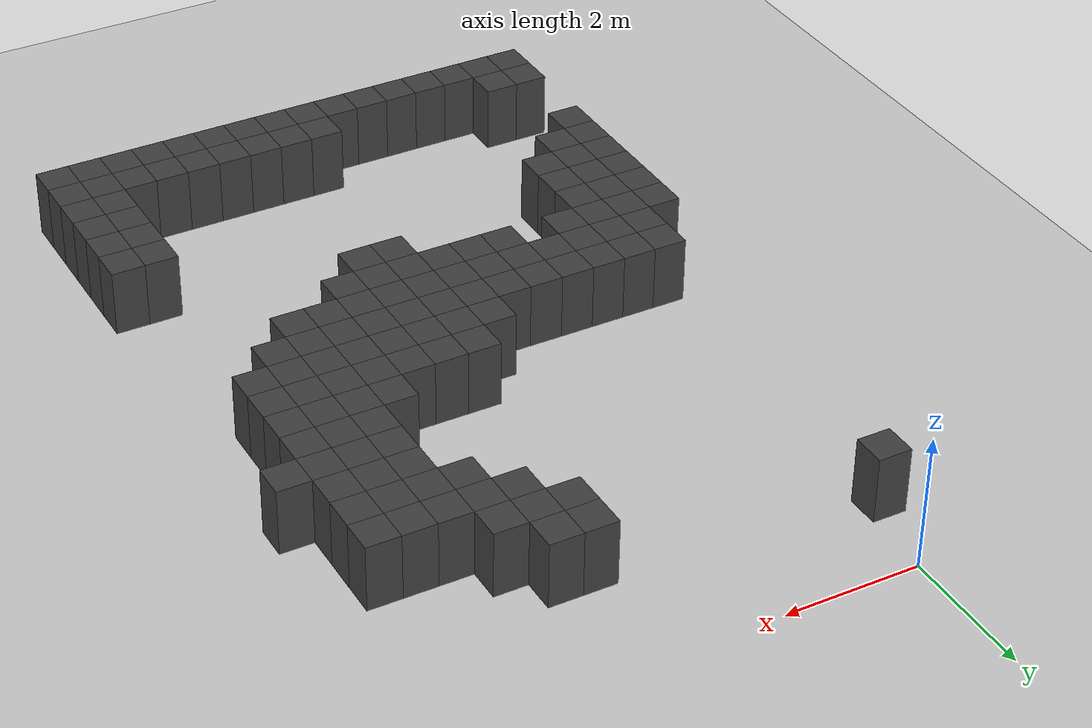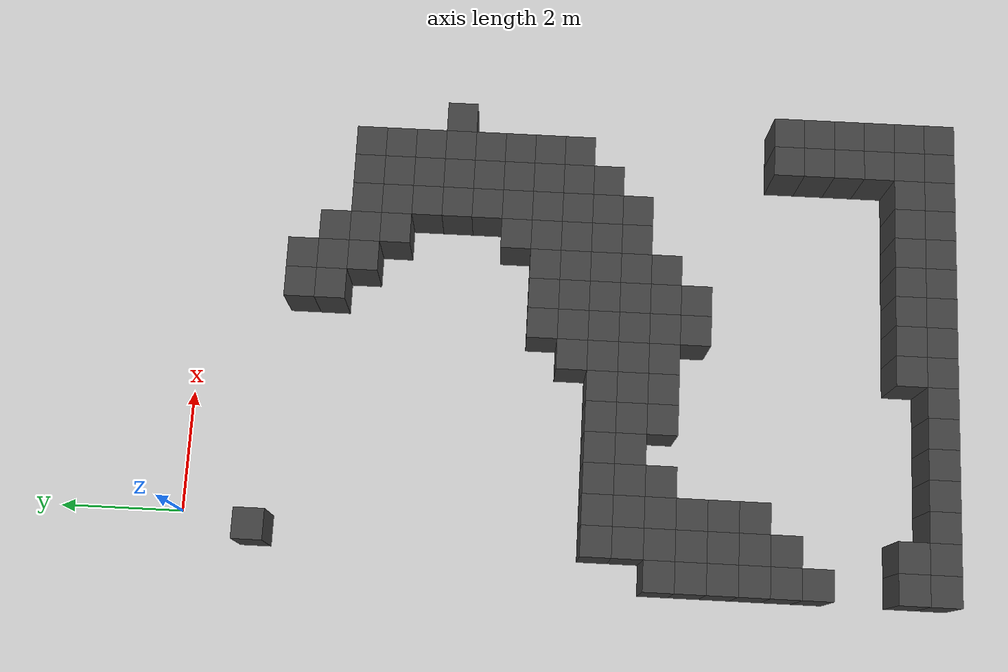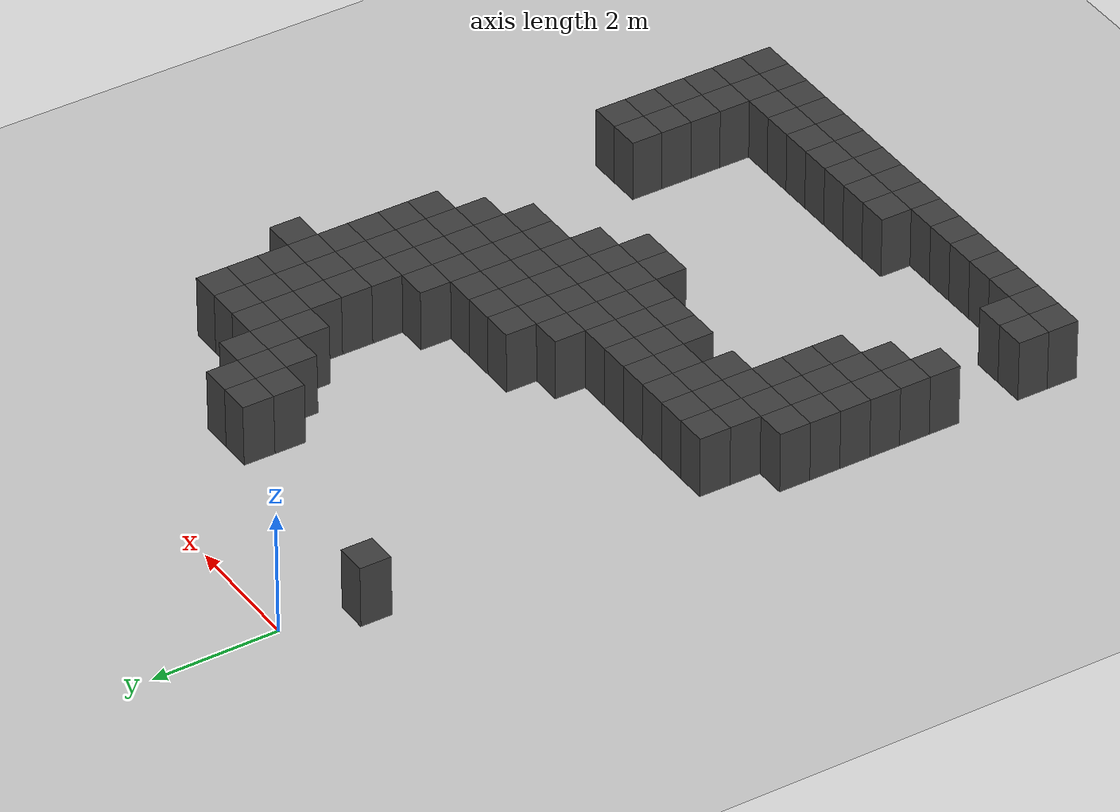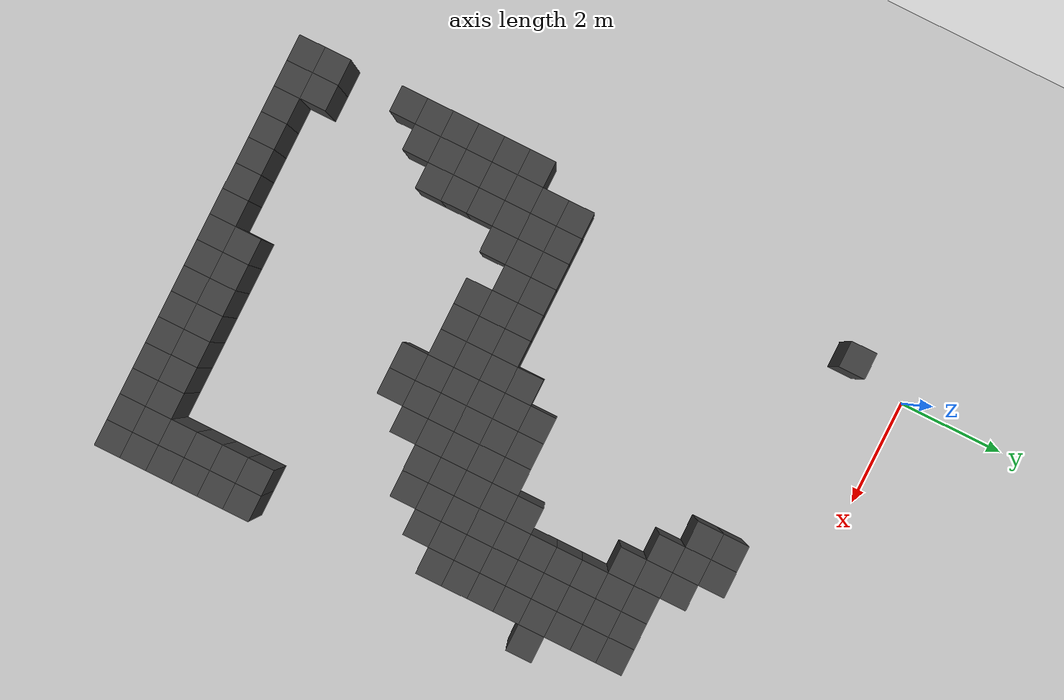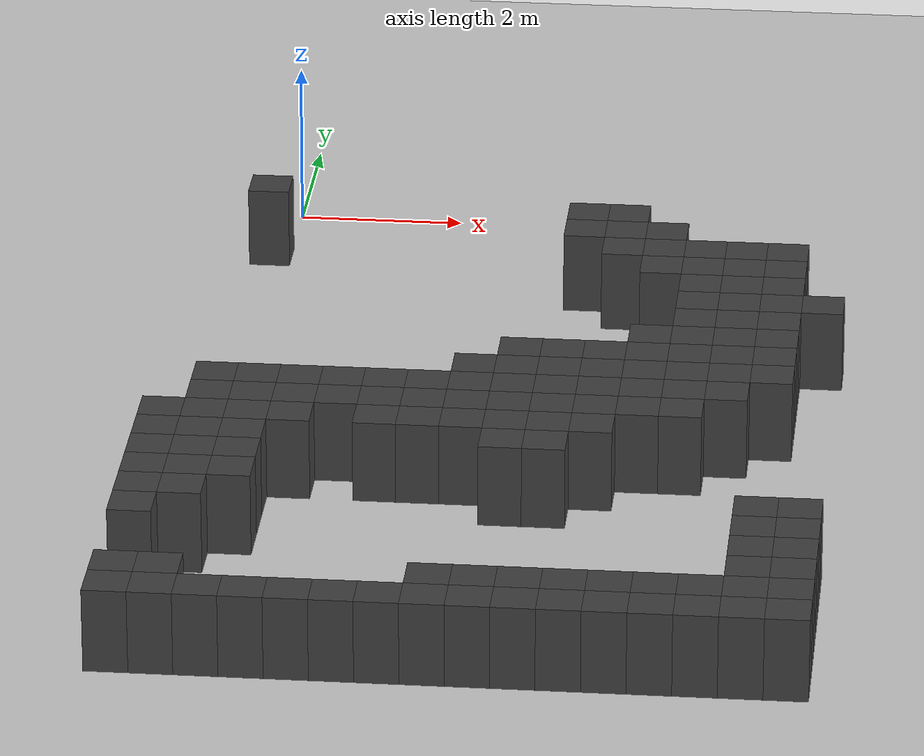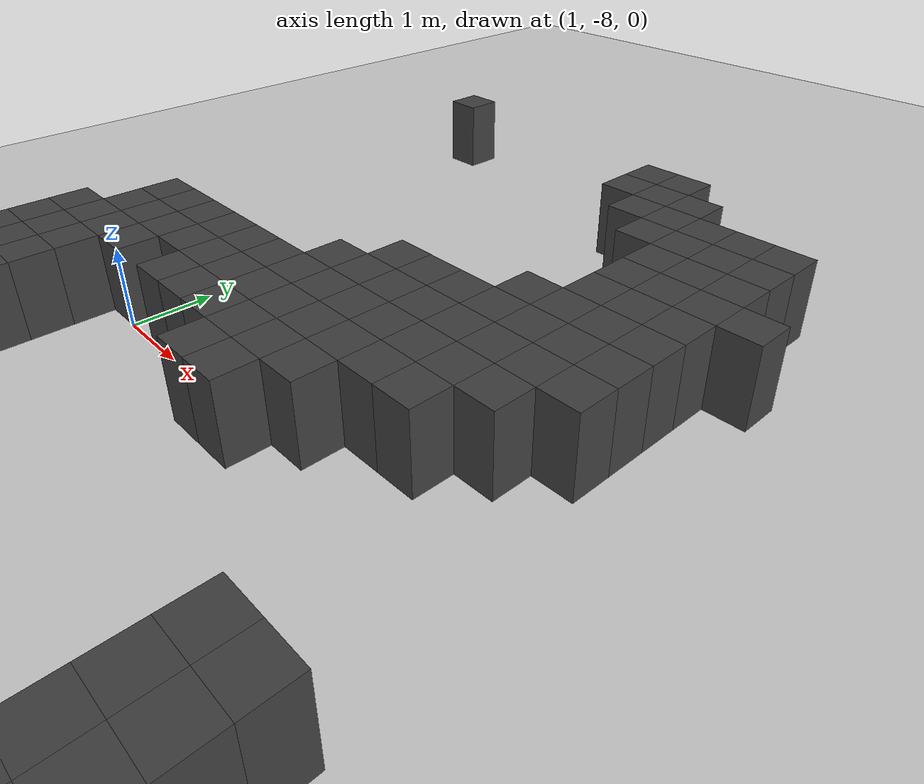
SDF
<sdf version="1.7">
 <world name="map_9713">
  <model name="ground_plane">
   <static>true</static>
   <link name="link">
    <collision name="collision">
     <geometry><plane><normal>0 0 1</normal><size>200 200</size></plane></geometry>
    </collision>
    <visual name="visual">
     <geometry><plane><normal>0 0 1</normal><size>200 200</size></plane></geometry>
     <material><ambient>0.8 0.8 0.8 1</ambient><diffuse>0.8 0.8 0.8 1</diffuse></material>
    </visual>
   </link>
  </model>
  <model name="maze_environment">
   <static>true</static>
   <link name="wall_503">
    <pose>-0.250 -1.250 0.500 0 0 0</pose>
    <collision name="col"><geometry><box><size>0.5 0.5 1.0</size></box></geometry></collision>
    <visual name="vis">
     <geometry><box><size>0.5 0.5 1.0</size></box></geometry>
     <material><ambient>0.15 0.15 0.15 1</ambient><diffuse>0.25 0.25 0.25 1</diffuse></material>
    </visual>
   </link>
   <link name="wall_525">
    <pose>3.750 -1.750 0.500 0 0 0</pose>
    <collision name="col"><geometry><box><size>0.5 0.5 1.0</size></box></geometry></collision>
    <visual name="vis">
     <geometry><box><size>0.5 0.5 1.0</size></box></geometry>
     <material><ambient>0.15 0.15 0.15 1</ambient><diffuse>0.25 0.25 0.25 1</diffuse></material>
    </visual>
   </link>
   <link name="wall_526">
    <pose>4.250 -1.750 0.500 0 0 0</pose>
    <collision name="col"><geometry><box><size>0.5 0.5 1.0</size></box></geometry></collision>
    <visual name="vis">
     <geometry><box><size>0.5 0.5 1.0</size></box></geometry>
     <material><ambient>0.15 0.15 0.15 1</ambient><diffuse>0.25 0.25 0.25 1</diffuse></material>
    </visual>
   </link>
   <link name="wall_544">
    <pose>3.750 -2.250 0.500 0 0 0</pose>
    <collision name="col"><geometry><box><size>0.5 0.5 1.0</size></box></geometry></collision>
    <visual name="vis">
     <geometry><box><size>0.5 0.5 1.0</size></box></geometry>
     <material><ambient>0.15 0.15 0.15 1</ambient><diffuse>0.25 0.25 0.25 1</diffuse></material>
    </visual>
   </link>
   <link name="wall_545">
    <pose>4.250 -2.250 0.500 0 0 0</pose>
    <collision name="col"><geometry><box><size>0.5 0.5 1.0</size></box></geometry></collision>
    <visual name="vis">
     <geometry><box><size>0.5 0.5 1.0</size></box></geometry>
     <material><ambient>0.15 0.15 0.15 1</ambient><diffuse>0.25 0.25 0.25 1</diffuse></material>
    </visual>
   </link>
   <link name="wall_546">
    <pose>4.750 -2.250 0.500 0 0 0</pose>
    <collision name="col"><geometry><box><size>0.5 0.5 1.0</size></box></geometry></collision>
    <visual name="vis">
     <geometry><box><size>0.5 0.5 1.0</size></box></geometry>
     <material><ambient>0.15 0.15 0.15 1</ambient><diffuse>0.25 0.25 0.25 1</diffuse></material>
    </visual>
   </link>
   <link name="wall_562">
    <pose>4.250 -2.750 0.500 0 0 0</pose>
    <collision name="col"><geometry><box><size>0.5 0.5 1.0</size></box></geometry></collision>
    <visual name="vis">
     <geometry><box><size>0.5 0.5 1.0</size></box></geometry>
     <material><ambient>0.15 0.15 0.15 1</ambient><diffuse>0.25 0.25 0.25 1</diffuse></material>
    </visual>
   </link>
   <link name="wall_563">
    <pose>4.750 -2.750 0.500 0 0 0</pose>
    <collision name="col"><geometry><box><size>0.5 0.5 1.0</size></box></geometry></collision>
    <visual name="vis">
     <geometry><box><size>0.5 0.5 1.0</size></box></geometry>
     <material><ambient>0.15 0.15 0.15 1</ambient><diffuse>0.25 0.25 0.25 1</diffuse></material>
    </visual>
   </link>
   <link name="wall_564">
    <pose>5.250 -2.750 0.500 0 0 0</pose>
    <collision name="col"><geometry><box><size>0.5 0.5 1.0</size></box></geometry></collision>
    <visual name="vis">
     <geometry><box><size>0.5 0.5 1.0</size></box></geometry>
     <material><ambient>0.15 0.15 0.15 1</ambient><diffuse>0.25 0.25 0.25 1</diffuse></material>
    </visual>
   </link>
   <link name="wall_565">
    <pose>5.750 -2.750 0.500 0 0 0</pose>
    <collision name="col"><geometry><box><size>0.5 0.5 1.0</size></box></geometry></collision>
    <visual name="vis">
     <geometry><box><size>0.5 0.5 1.0</size></box></geometry>
     <material><ambient>0.15 0.15 0.15 1</ambient><diffuse>0.25 0.25 0.25 1</diffuse></material>
    </visual>
   </link>
   <link name="wall_566">
    <pose>6.250 -2.750 0.500 0 0 0</pose>
    <collision name="col"><geometry><box><size>0.5 0.5 1.0</size></box></geometry></collision>
    <visual name="vis">
     <geometry><box><size>0.5 0.5 1.0</size></box></geometry>
     <material><ambient>0.15 0.15 0.15 1</ambient><diffuse>0.25 0.25 0.25 1</diffuse></material>
    </visual>
   </link>
   <link name="wall_585">
    <pose>4.750 -3.250 0.500 0 0 0</pose>
    <collision name="col"><geometry><box><size>0.5 0.5 1.0</size></box></geometry></collision>
    <visual name="vis">
     <geometry><box><size>0.5 0.5 1.0</size></box></geometry>
     <material><ambient>0.15 0.15 0.15 1</ambient><diffuse>0.25 0.25 0.25 1</diffuse></material>
    </visual>
   </link>
   <link name="wall_586">
    <pose>5.250 -3.250 0.500 0 0 0</pose>
    <collision name="col"><geometry><box><size>0.5 0.5 1.0</size></box></geometry></collision>
    <visual name="vis">
     <geometry><box><size>0.5 0.5 1.0</size></box></geometry>
     <material><ambient>0.15 0.15 0.15 1</ambient><diffuse>0.25 0.25 0.25 1</diffuse></material>
    </visual>
   </link>
   <link name="wall_587">
    <pose>5.750 -3.250 0.500 0 0 0</pose>
    <collision name="col"><geometry><box><size>0.5 0.5 1.0</size></box></geometry></collision>
    <visual name="vis">
     <geometry><box><size>0.5 0.5 1.0</size></box></geometry>
     <material><ambient>0.15 0.15 0.15 1</ambient><diffuse>0.25 0.25 0.25 1</diffuse></material>
    </visual>
   </link>
   <link name="wall_588">
    <pose>6.250 -3.250 0.500 0 0 0</pose>
    <collision name="col"><geometry><box><size>0.5 0.5 1.0</size></box></geometry></collision>
    <visual name="vis">
     <geometry><box><size>0.5 0.5 1.0</size></box></geometry>
     <material><ambient>0.15 0.15 0.15 1</ambient><diffuse>0.25 0.25 0.25 1</diffuse></material>
    </visual>
   </link>
   <link name="wall_609">
    <pose>5.250 -3.750 0.500 0 0 0</pose>
    <collision name="col"><geometry><box><size>0.5 0.5 1.0</size></box></geometry></collision>
    <visual name="vis">
     <geometry><box><size>0.5 0.5 1.0</size></box></geometry>
     <material><ambient>0.15 0.15 0.15 1</ambient><diffuse>0.25 0.25 0.25 1</diffuse></material>
    </visual>
   </link>
   <link name="wall_610">
    <pose>5.750 -3.750 0.500 0 0 0</pose>
    <collision name="col"><geometry><box><size>0.5 0.5 1.0</size></box></geometry></collision>
    <visual name="vis">
     <geometry><box><size>0.5 0.5 1.0</size></box></geometry>
     <material><ambient>0.15 0.15 0.15 1</ambient><diffuse>0.25 0.25 0.25 1</diffuse></material>
    </visual>
   </link>
   <link name="wall_611">
    <pose>6.250 -3.750 0.500 0 0 0</pose>
    <collision name="col"><geometry><box><size>0.5 0.5 1.0</size></box></geometry></collision>
    <visual name="vis">
     <geometry><box><size>0.5 0.5 1.0</size></box></geometry>
     <material><ambient>0.15 0.15 0.15 1</ambient><diffuse>0.25 0.25 0.25 1</diffuse></material>
    </visual>
   </link>
   <link name="wall_630">
    <pose>5.250 -4.250 0.500 0 0 0</pose>
    <collision name="col"><geometry><box><size>0.5 0.5 1.0</size></box></geometry></collision>
    <visual name="vis">
     <geometry><box><size>0.5 0.5 1.0</size></box></geometry>
     <material><ambient>0.15 0.15 0.15 1</ambient><diffuse>0.25 0.25 0.25 1</diffuse></material>
    </visual>
   </link>
   <link name="wall_631">
    <pose>5.750 -4.250 0.500 0 0 0</pose>
    <collision name="col"><geometry><box><size>0.5 0.5 1.0</size></box></geometry></collision>
    <visual name="vis">
     <geometry><box><size>0.5 0.5 1.0</size></box></geometry>
     <material><ambient>0.15 0.15 0.15 1</ambient><diffuse>0.25 0.25 0.25 1</diffuse></material>
    </visual>
   </link>
   <link name="wall_632">
    <pose>6.250 -4.250 0.500 0 0 0</pose>
    <collision name="col"><geometry><box><size>0.5 0.5 1.0</size></box></geometry></collision>
    <visual name="vis">
     <geometry><box><size>0.5 0.5 1.0</size></box></geometry>
     <material><ambient>0.15 0.15 0.15 1</ambient><diffuse>0.25 0.25 0.25 1</diffuse></material>
    </visual>
   </link>
   <link name="wall_633">
    <pose>6.750 -4.250 0.500 0 0 0</pose>
    <collision name="col"><geometry><box><size>0.5 0.5 1.0</size></box></geometry></collision>
    <visual name="vis">
     <geometry><box><size>0.5 0.5 1.0</size></box></geometry>
     <material><ambient>0.15 0.15 0.15 1</ambient><diffuse>0.25 0.25 0.25 1</diffuse></material>
    </visual>
   </link>
   <link name="wall_646">
    <pose>5.250 -4.750 0.500 0 0 0</pose>
    <collision name="col"><geometry><box><size>0.5 0.5 1.0</size></box></geometry></collision>
    <visual name="vis">
     <geometry><box><size>0.5 0.5 1.0</size></box></geometry>
     <material><ambient>0.15 0.15 0.15 1</ambient><diffuse>0.25 0.25 0.25 1</diffuse></material>
    </visual>
   </link>
   <link name="wall_647">
    <pose>5.750 -4.750 0.500 0 0 0</pose>
    <collision name="col"><geometry><box><size>0.5 0.5 1.0</size></box></geometry></collision>
    <visual name="vis">
     <geometry><box><size>0.5 0.5 1.0</size></box></geometry>
     <material><ambient>0.15 0.15 0.15 1</ambient><diffuse>0.25 0.25 0.25 1</diffuse></material>
    </visual>
   </link>
   <link name="wall_648">
    <pose>6.250 -4.750 0.500 0 0 0</pose>
    <collision name="col"><geometry><box><size>0.5 0.5 1.0</size></box></geometry></collision>
    <visual name="vis">
     <geometry><box><size>0.5 0.5 1.0</size></box></geometry>
     <material><ambient>0.15 0.15 0.15 1</ambient><diffuse>0.25 0.25 0.25 1</diffuse></material>
    </visual>
   </link>
   <link name="wall_660">
    <pose>4.750 -5.250 0.500 0 0 0</pose>
    <collision name="col"><geometry><box><size>0.5 0.5 1.0</size></box></geometry></collision>
    <visual name="vis">
     <geometry><box><size>0.5 0.5 1.0</size></box></geometry>
     <material><ambient>0.15 0.15 0.15 1</ambient><diffuse>0.25 0.25 0.25 1</diffuse></material>
    </visual>
   </link>
   <link name="wall_661">
    <pose>5.250 -5.250 0.500 0 0 0</pose>
    <collision name="col"><geometry><box><size>0.5 0.5 1.0</size></box></geometry></collision>
    <visual name="vis">
     <geometry><box><size>0.5 0.5 1.0</size></box></geometry>
     <material><ambient>0.15 0.15 0.15 1</ambient><diffuse>0.25 0.25 0.25 1</diffuse></material>
    </visual>
   </link>
   <link name="wall_662">
    <pose>5.750 -5.250 0.500 0 0 0</pose>
    <collision name="col"><geometry><box><size>0.5 0.5 1.0</size></box></geometry></collision>
    <visual name="vis">
     <geometry><box><size>0.5 0.5 1.0</size></box></geometry>
     <material><ambient>0.15 0.15 0.15 1</ambient><diffuse>0.25 0.25 0.25 1</diffuse></material>
    </visual>
   </link>
   <link name="wall_663">
    <pose>6.250 -5.250 0.500 0 0 0</pose>
    <collision name="col"><geometry><box><size>0.5 0.5 1.0</size></box></geometry></collision>
    <visual name="vis">
     <geometry><box><size>0.5 0.5 1.0</size></box></geometry>
     <material><ambient>0.15 0.15 0.15 1</ambient><diffuse>0.25 0.25 0.25 1</diffuse></material>
    </visual>
   </link>
   <link name="wall_675">
    <pose>3.250 -5.750 0.500 0 0 0</pose>
    <collision name="col"><geometry><box><size>0.5 0.5 1.0</size></box></geometry></collision>
    <visual name="vis">
     <geometry><box><size>0.5 0.5 1.0</size></box></geometry>
     <material><ambient>0.15 0.15 0.15 1</ambient><diffuse>0.25 0.25 0.25 1</diffuse></material>
    </visual>
   </link>
   <link name="wall_676">
    <pose>3.750 -5.750 0.500 0 0 0</pose>
    <collision name="col"><geometry><box><size>0.5 0.5 1.0</size></box></geometry></collision>
    <visual name="vis">
     <geometry><box><size>0.5 0.5 1.0</size></box></geometry>
     <material><ambient>0.15 0.15 0.15 1</ambient><diffuse>0.25 0.25 0.25 1</diffuse></material>
    </visual>
   </link>
   <link name="wall_677">
    <pose>4.250 -5.750 0.500 0 0 0</pose>
    <collision name="col"><geometry><box><size>0.5 0.5 1.0</size></box></geometry></collision>
    <visual name="vis">
     <geometry><box><size>0.5 0.5 1.0</size></box></geometry>
     <material><ambient>0.15 0.15 0.15 1</ambient><diffuse>0.25 0.25 0.25 1</diffuse></material>
    </visual>
   </link>
   <link name="wall_678">
    <pose>4.750 -5.750 0.500 0 0 0</pose>
    <collision name="col"><geometry><box><size>0.5 0.5 1.0</size></box></geometry></collision>
    <visual name="vis">
     <geometry><box><size>0.5 0.5 1.0</size></box></geometry>
     <material><ambient>0.15 0.15 0.15 1</ambient><diffuse>0.25 0.25 0.25 1</diffuse></material>
    </visual>
   </link>
   <link name="wall_679">
    <pose>5.250 -5.750 0.500 0 0 0</pose>
    <collision name="col"><geometry><box><size>0.5 0.5 1.0</size></box></geometry></collision>
    <visual name="vis">
     <geometry><box><size>0.5 0.5 1.0</size></box></geometry>
     <material><ambient>0.15 0.15 0.15 1</ambient><diffuse>0.25 0.25 0.25 1</diffuse></material>
    </visual>
   </link>
   <link name="wall_680">
    <pose>5.750 -5.750 0.500 0 0 0</pose>
    <collision name="col"><geometry><box><size>0.5 0.5 1.0</size></box></geometry></collision>
    <visual name="vis">
     <geometry><box><size>0.5 0.5 1.0</size></box></geometry>
     <material><ambient>0.15 0.15 0.15 1</ambient><diffuse>0.25 0.25 0.25 1</diffuse></material>
    </visual>
   </link>
   <link name="wall_681">
    <pose>6.250 -5.750 0.500 0 0 0</pose>
    <collision name="col"><geometry><box><size>0.5 0.5 1.0</size></box></geometry></collision>
    <visual name="vis">
     <geometry><box><size>0.5 0.5 1.0</size></box></geometry>
     <material><ambient>0.15 0.15 0.15 1</ambient><diffuse>0.25 0.25 0.25 1</diffuse></material>
    </visual>
   </link>
   <link name="wall_697">
    <pose>2.750 -6.250 0.500 0 0 0</pose>
    <collision name="col"><geometry><box><size>0.5 0.5 1.0</size></box></geometry></collision>
    <visual name="vis">
     <geometry><box><size>0.5 0.5 1.0</size></box></geometry>
     <material><ambient>0.15 0.15 0.15 1</ambient><diffuse>0.25 0.25 0.25 1</diffuse></material>
    </visual>
   </link>
   <link name="wall_698">
    <pose>3.250 -6.250 0.500 0 0 0</pose>
    <collision name="col"><geometry><box><size>0.5 0.5 1.0</size></box></geometry></collision>
    <visual name="vis">
     <geometry><box><size>0.5 0.5 1.0</size></box></geometry>
     <material><ambient>0.15 0.15 0.15 1</ambient><diffuse>0.25 0.25 0.25 1</diffuse></material>
    </visual>
   </link>
   <link name="wall_699">
    <pose>3.750 -6.250 0.500 0 0 0</pose>
    <collision name="col"><geometry><box><size>0.5 0.5 1.0</size></box></geometry></collision>
    <visual name="vis">
     <geometry><box><size>0.5 0.5 1.0</size></box></geometry>
     <material><ambient>0.15 0.15 0.15 1</ambient><diffuse>0.25 0.25 0.25 1</diffuse></material>
    </visual>
   </link>
   <link name="wall_700">
    <pose>4.250 -6.250 0.500 0 0 0</pose>
    <collision name="col"><geometry><box><size>0.5 0.5 1.0</size></box></geometry></collision>
    <visual name="vis">
     <geometry><box><size>0.5 0.5 1.0</size></box></geometry>
     <material><ambient>0.15 0.15 0.15 1</ambient><diffuse>0.25 0.25 0.25 1</diffuse></material>
    </visual>
   </link>
   <link name="wall_701">
    <pose>4.750 -6.250 0.500 0 0 0</pose>
    <collision name="col"><geometry><box><size>0.5 0.5 1.0</size></box></geometry></collision>
    <visual name="vis">
     <geometry><box><size>0.5 0.5 1.0</size></box></geometry>
     <material><ambient>0.15 0.15 0.15 1</ambient><diffuse>0.25 0.25 0.25 1</diffuse></material>
    </visual>
   </link>
   <link name="wall_702">
    <pose>5.250 -6.250 0.500 0 0 0</pose>
    <collision name="col"><geometry><box><size>0.5 0.5 1.0</size></box></geometry></collision>
    <visual name="vis">
     <geometry><box><size>0.5 0.5 1.0</size></box></geometry>
     <material><ambient>0.15 0.15 0.15 1</ambient><diffuse>0.25 0.25 0.25 1</diffuse></material>
    </visual>
   </link>
   <link name="wall_703">
    <pose>5.750 -6.250 0.500 0 0 0</pose>
    <collision name="col"><geometry><box><size>0.5 0.5 1.0</size></box></geometry></collision>
    <visual name="vis">
     <geometry><box><size>0.5 0.5 1.0</size></box></geometry>
     <material><ambient>0.15 0.15 0.15 1</ambient><diffuse>0.25 0.25 0.25 1</diffuse></material>
    </visual>
   </link>
   <link name="wall_704">
    <pose>6.250 -6.250 0.500 0 0 0</pose>
    <collision name="col"><geometry><box><size>0.5 0.5 1.0</size></box></geometry></collision>
    <visual name="vis">
     <geometry><box><size>0.5 0.5 1.0</size></box></geometry>
     <material><ambient>0.15 0.15 0.15 1</ambient><diffuse>0.25 0.25 0.25 1</diffuse></material>
    </visual>
   </link>
   <link name="wall_722">
    <pose>-0.250 -6.750 0.500 0 0 0</pose>
    <collision name="col"><geometry><box><size>0.5 0.5 1.0</size></box></geometry></collision>
    <visual name="vis">
     <geometry><box><size>0.5 0.5 1.0</size></box></geometry>
     <material><ambient>0.15 0.15 0.15 1</ambient><diffuse>0.25 0.25 0.25 1</diffuse></material>
    </visual>
   </link>
   <link name="wall_723">
    <pose>0.250 -6.750 0.500 0 0 0</pose>
    <collision name="col"><geometry><box><size>0.5 0.5 1.0</size></box></geometry></collision>
    <visual name="vis">
     <geometry><box><size>0.5 0.5 1.0</size></box></geometry>
     <material><ambient>0.15 0.15 0.15 1</ambient><diffuse>0.25 0.25 0.25 1</diffuse></material>
    </visual>
   </link>
   <link name="wall_724">
    <pose>0.750 -6.750 0.500 0 0 0</pose>
    <collision name="col"><geometry><box><size>0.5 0.5 1.0</size></box></geometry></collision>
    <visual name="vis">
     <geometry><box><size>0.5 0.5 1.0</size></box></geometry>
     <material><ambient>0.15 0.15 0.15 1</ambient><diffuse>0.25 0.25 0.25 1</diffuse></material>
    </visual>
   </link>
   <link name="wall_725">
    <pose>1.250 -6.750 0.500 0 0 0</pose>
    <collision name="col"><geometry><box><size>0.5 0.5 1.0</size></box></geometry></collision>
    <visual name="vis">
     <geometry><box><size>0.5 0.5 1.0</size></box></geometry>
     <material><ambient>0.15 0.15 0.15 1</ambient><diffuse>0.25 0.25 0.25 1</diffuse></material>
    </visual>
   </link>
   <link name="wall_726">
    <pose>1.750 -6.750 0.500 0 0 0</pose>
    <collision name="col"><geometry><box><size>0.5 0.5 1.0</size></box></geometry></collision>
    <visual name="vis">
     <geometry><box><size>0.5 0.5 1.0</size></box></geometry>
     <material><ambient>0.15 0.15 0.15 1</ambient><diffuse>0.25 0.25 0.25 1</diffuse></material>
    </visual>
   </link>
   <link name="wall_727">
    <pose>2.250 -6.750 0.500 0 0 0</pose>
    <collision name="col"><geometry><box><size>0.5 0.5 1.0</size></box></geometry></collision>
    <visual name="vis">
     <geometry><box><size>0.5 0.5 1.0</size></box></geometry>
     <material><ambient>0.15 0.15 0.15 1</ambient><diffuse>0.25 0.25 0.25 1</diffuse></material>
    </visual>
   </link>
   <link name="wall_728">
    <pose>2.750 -6.750 0.500 0 0 0</pose>
    <collision name="col"><geometry><box><size>0.5 0.5 1.0</size></box></geometry></collision>
    <visual name="vis">
     <geometry><box><size>0.5 0.5 1.0</size></box></geometry>
     <material><ambient>0.15 0.15 0.15 1</ambient><diffuse>0.25 0.25 0.25 1</diffuse></material>
    </visual>
   </link>
   <link name="wall_729">
    <pose>3.250 -6.750 0.500 0 0 0</pose>
    <collision name="col"><geometry><box><size>0.5 0.5 1.0</size></box></geometry></collision>
    <visual name="vis">
     <geometry><box><size>0.5 0.5 1.0</size></box></geometry>
     <material><ambient>0.15 0.15 0.15 1</ambient><diffuse>0.25 0.25 0.25 1</diffuse></material>
    </visual>
   </link>
   <link name="wall_730">
    <pose>3.750 -6.750 0.500 0 0 0</pose>
    <collision name="col"><geometry><box><size>0.5 0.5 1.0</size></box></geometry></collision>
    <visual name="vis">
     <geometry><box><size>0.5 0.5 1.0</size></box></geometry>
     <material><ambient>0.15 0.15 0.15 1</ambient><diffuse>0.25 0.25 0.25 1</diffuse></material>
    </visual>
   </link>
   <link name="wall_731">
    <pose>4.250 -6.750 0.500 0 0 0</pose>
    <collision name="col"><geometry><box><size>0.5 0.5 1.0</size></box></geometry></collision>
    <visual name="vis">
     <geometry><box><size>0.5 0.5 1.0</size></box></geometry>
     <material><ambient>0.15 0.15 0.15 1</ambient><diffuse>0.25 0.25 0.25 1</diffuse></material>
    </visual>
   </link>
   <link name="wall_732">
    <pose>4.750 -6.750 0.500 0 0 0</pose>
    <collision name="col"><geometry><box><size>0.5 0.5 1.0</size></box></geometry></collision>
    <visual name="vis">
     <geometry><box><size>0.5 0.5 1.0</size></box></geometry>
     <material><ambient>0.15 0.15 0.15 1</ambient><diffuse>0.25 0.25 0.25 1</diffuse></material>
    </visual>
   </link>
   <link name="wall_733">
    <pose>5.250 -6.750 0.500 0 0 0</pose>
    <collision name="col"><geometry><box><size>0.5 0.5 1.0</size></box></geometry></collision>
    <visual name="vis">
     <geometry><box><size>0.5 0.5 1.0</size></box></geometry>
     <material><ambient>0.15 0.15 0.15 1</ambient><diffuse>0.25 0.25 0.25 1</diffuse></material>
    </visual>
   </link>
   <link name="wall_734">
    <pose>5.750 -6.750 0.500 0 0 0</pose>
    <collision name="col"><geometry><box><size>0.5 0.5 1.0</size></box></geometry></collision>
    <visual name="vis">
     <geometry><box><size>0.5 0.5 1.0</size></box></geometry>
     <material><ambient>0.15 0.15 0.15 1</ambient><diffuse>0.25 0.25 0.25 1</diffuse></material>
    </visual>
   </link>
   <link name="wall_754">
    <pose>-0.250 -7.250 0.500 0 0 0</pose>
    <collision name="col"><geometry><box><size>0.5 0.5 1.0</size></box></geometry></collision>
    <visual name="vis">
     <geometry><box><size>0.5 0.5 1.0</size></box></geometry>
     <material><ambient>0.15 0.15 0.15 1</ambient><diffuse>0.25 0.25 0.25 1</diffuse></material>
    </visual>
   </link>
   <link name="wall_755">
    <pose>0.250 -7.250 0.500 0 0 0</pose>
    <collision name="col"><geometry><box><size>0.5 0.5 1.0</size></box></geometry></collision>
    <visual name="vis">
     <geometry><box><size>0.5 0.5 1.0</size></box></geometry>
     <material><ambient>0.15 0.15 0.15 1</ambient><diffuse>0.25 0.25 0.25 1</diffuse></material>
    </visual>
   </link>
   <link name="wall_756">
    <pose>0.750 -7.250 0.500 0 0 0</pose>
    <collision name="col"><geometry><box><size>0.5 0.5 1.0</size></box></geometry></collision>
    <visual name="vis">
     <geometry><box><size>0.5 0.5 1.0</size></box></geometry>
     <material><ambient>0.15 0.15 0.15 1</ambient><diffuse>0.25 0.25 0.25 1</diffuse></material>
    </visual>
   </link>
   <link name="wall_757">
    <pose>1.250 -7.250 0.500 0 0 0</pose>
    <collision name="col"><geometry><box><size>0.5 0.5 1.0</size></box></geometry></collision>
    <visual name="vis">
     <geometry><box><size>0.5 0.5 1.0</size></box></geometry>
     <material><ambient>0.15 0.15 0.15 1</ambient><diffuse>0.25 0.25 0.25 1</diffuse></material>
    </visual>
   </link>
   <link name="wall_758">
    <pose>1.750 -7.250 0.500 0 0 0</pose>
    <collision name="col"><geometry><box><size>0.5 0.5 1.0</size></box></geometry></collision>
    <visual name="vis">
     <geometry><box><size>0.5 0.5 1.0</size></box></geometry>
     <material><ambient>0.15 0.15 0.15 1</ambient><diffuse>0.25 0.25 0.25 1</diffuse></material>
    </visual>
   </link>
   <link name="wall_759">
    <pose>2.250 -7.250 0.500 0 0 0</pose>
    <collision name="col"><geometry><box><size>0.5 0.5 1.0</size></box></geometry></collision>
    <visual name="vis">
     <geometry><box><size>0.5 0.5 1.0</size></box></geometry>
     <material><ambient>0.15 0.15 0.15 1</ambient><diffuse>0.25 0.25 0.25 1</diffuse></material>
    </visual>
   </link>
   <link name="wall_760">
    <pose>2.750 -7.250 0.500 0 0 0</pose>
    <collision name="col"><geometry><box><size>0.5 0.5 1.0</size></box></geometry></collision>
    <visual name="vis">
     <geometry><box><size>0.5 0.5 1.0</size></box></geometry>
     <material><ambient>0.15 0.15 0.15 1</ambient><diffuse>0.25 0.25 0.25 1</diffuse></material>
    </visual>
   </link>
   <link name="wall_761">
    <pose>3.250 -7.250 0.500 0 0 0</pose>
    <collision name="col"><geometry><box><size>0.5 0.5 1.0</size></box></geometry></collision>
    <visual name="vis">
     <geometry><box><size>0.5 0.5 1.0</size></box></geometry>
     <material><ambient>0.15 0.15 0.15 1</ambient><diffuse>0.25 0.25 0.25 1</diffuse></material>
    </visual>
   </link>
   <link name="wall_762">
    <pose>3.750 -7.250 0.500 0 0 0</pose>
    <collision name="col"><geometry><box><size>0.5 0.5 1.0</size></box></geometry></collision>
    <visual name="vis">
     <geometry><box><size>0.5 0.5 1.0</size></box></geometry>
     <material><ambient>0.15 0.15 0.15 1</ambient><diffuse>0.25 0.25 0.25 1</diffuse></material>
    </visual>
   </link>
   <link name="wall_763">
    <pose>4.250 -7.250 0.500 0 0 0</pose>
    <collision name="col"><geometry><box><size>0.5 0.5 1.0</size></box></geometry></collision>
    <visual name="vis">
     <geometry><box><size>0.5 0.5 1.0</size></box></geometry>
     <material><ambient>0.15 0.15 0.15 1</ambient><diffuse>0.25 0.25 0.25 1</diffuse></material>
    </visual>
   </link>
   <link name="wall_764">
    <pose>4.750 -7.250 0.500 0 0 0</pose>
    <collision name="col"><geometry><box><size>0.5 0.5 1.0</size></box></geometry></collision>
    <visual name="vis">
     <geometry><box><size>0.5 0.5 1.0</size></box></geometry>
     <material><ambient>0.15 0.15 0.15 1</ambient><diffuse>0.25 0.25 0.25 1</diffuse></material>
    </visual>
   </link>
   <link name="wall_765">
    <pose>5.250 -7.250 0.500 0 0 0</pose>
    <collision name="col"><geometry><box><size>0.5 0.5 1.0</size></box></geometry></collision>
    <visual name="vis">
     <geometry><box><size>0.5 0.5 1.0</size></box></geometry>
     <material><ambient>0.15 0.15 0.15 1</ambient><diffuse>0.25 0.25 0.25 1</diffuse></material>
    </visual>
   </link>
   <link name="wall_787">
    <pose>-0.750 -7.750 0.500 0 0 0</pose>
    <collision name="col"><geometry><box><size>0.5 0.5 1.0</size></box></geometry></collision>
    <visual name="vis">
     <geometry><box><size>0.5 0.5 1.0</size></box></geometry>
     <material><ambient>0.15 0.15 0.15 1</ambient><diffuse>0.25 0.25 0.25 1</diffuse></material>
    </visual>
   </link>
   <link name="wall_788">
    <pose>-0.250 -7.750 0.500 0 0 0</pose>
    <collision name="col"><geometry><box><size>0.5 0.5 1.0</size></box></geometry></collision>
    <visual name="vis">
     <geometry><box><size>0.5 0.5 1.0</size></box></geometry>
     <material><ambient>0.15 0.15 0.15 1</ambient><diffuse>0.25 0.25 0.25 1</diffuse></material>
    </visual>
   </link>
   <link name="wall_789">
    <pose>0.250 -7.750 0.500 0 0 0</pose>
    <collision name="col"><geometry><box><size>0.5 0.5 1.0</size></box></geometry></collision>
    <visual name="vis">
     <geometry><box><size>0.5 0.5 1.0</size></box></geometry>
     <material><ambient>0.15 0.15 0.15 1</ambient><diffuse>0.25 0.25 0.25 1</diffuse></material>
    </visual>
   </link>
   <link name="wall_790">
    <pose>0.750 -7.750 0.500 0 0 0</pose>
    <collision name="col"><geometry><box><size>0.5 0.5 1.0</size></box></geometry></collision>
    <visual name="vis">
     <geometry><box><size>0.5 0.5 1.0</size></box></geometry>
     <material><ambient>0.15 0.15 0.15 1</ambient><diffuse>0.25 0.25 0.25 1</diffuse></material>
    </visual>
   </link>
   <link name="wall_791">
    <pose>1.750 -7.750 0.500 0 0 0</pose>
    <collision name="col"><geometry><box><size>0.5 0.5 1.0</size></box></geometry></collision>
    <visual name="vis">
     <geometry><box><size>0.5 0.5 1.0</size></box></geometry>
     <material><ambient>0.15 0.15 0.15 1</ambient><diffuse>0.25 0.25 0.25 1</diffuse></material>
    </visual>
   </link>
   <link name="wall_792">
    <pose>2.250 -7.750 0.500 0 0 0</pose>
    <collision name="col"><geometry><box><size>0.5 0.5 1.0</size></box></geometry></collision>
    <visual name="vis">
     <geometry><box><size>0.5 0.5 1.0</size></box></geometry>
     <material><ambient>0.15 0.15 0.15 1</ambient><diffuse>0.25 0.25 0.25 1</diffuse></material>
    </visual>
   </link>
   <link name="wall_793">
    <pose>2.750 -7.750 0.500 0 0 0</pose>
    <collision name="col"><geometry><box><size>0.5 0.5 1.0</size></box></geometry></collision>
    <visual name="vis">
     <geometry><box><size>0.5 0.5 1.0</size></box></geometry>
     <material><ambient>0.15 0.15 0.15 1</ambient><diffuse>0.25 0.25 0.25 1</diffuse></material>
    </visual>
   </link>
   <link name="wall_794">
    <pose>3.250 -7.750 0.500 0 0 0</pose>
    <collision name="col"><geometry><box><size>0.5 0.5 1.0</size></box></geometry></collision>
    <visual name="vis">
     <geometry><box><size>0.5 0.5 1.0</size></box></geometry>
     <material><ambient>0.15 0.15 0.15 1</ambient><diffuse>0.25 0.25 0.25 1</diffuse></material>
    </visual>
   </link>
   <link name="wall_795">
    <pose>3.750 -7.750 0.500 0 0 0</pose>
    <collision name="col"><geometry><box><size>0.5 0.5 1.0</size></box></geometry></collision>
    <visual name="vis">
     <geometry><box><size>0.5 0.5 1.0</size></box></geometry>
     <material><ambient>0.15 0.15 0.15 1</ambient><diffuse>0.25 0.25 0.25 1</diffuse></material>
    </visual>
   </link>
   <link name="wall_796">
    <pose>4.250 -7.750 0.500 0 0 0</pose>
    <collision name="col"><geometry><box><size>0.5 0.5 1.0</size></box></geometry></collision>
    <visual name="vis">
     <geometry><box><size>0.5 0.5 1.0</size></box></geometry>
     <material><ambient>0.15 0.15 0.15 1</ambient><diffuse>0.25 0.25 0.25 1</diffuse></material>
    </visual>
   </link>
   <link name="wall_816">
    <pose>-0.750 -8.250 0.500 0 0 0</pose>
    <collision name="col"><geometry><box><size>0.5 0.5 1.0</size></box></geometry></collision>
    <visual name="vis">
     <geometry><box><size>0.5 0.5 1.0</size></box></geometry>
     <material><ambient>0.15 0.15 0.15 1</ambient><diffuse>0.25 0.25 0.25 1</diffuse></material>
    </visual>
   </link>
   <link name="wall_817">
    <pose>-0.250 -8.250 0.500 0 0 0</pose>
    <collision name="col"><geometry><box><size>0.5 0.5 1.0</size></box></geometry></collision>
    <visual name="vis">
     <geometry><box><size>0.5 0.5 1.0</size></box></geometry>
     <material><ambient>0.15 0.15 0.15 1</ambient><diffuse>0.25 0.25 0.25 1</diffuse></material>
    </visual>
   </link>
   <link name="wall_818">
    <pose>0.250 -8.250 0.500 0 0 0</pose>
    <collision name="col"><geometry><box><size>0.5 0.5 1.0</size></box></geometry></collision>
    <visual name="vis">
     <geometry><box><size>0.5 0.5 1.0</size></box></geometry>
     <material><ambient>0.15 0.15 0.15 1</ambient><diffuse>0.25 0.25 0.25 1</diffuse></material>
    </visual>
   </link>
   <link name="wall_819">
    <pose>3.250 -8.250 0.500 0 0 0</pose>
    <collision name="col"><geometry><box><size>0.5 0.5 1.0</size></box></geometry></collision>
    <visual name="vis">
     <geometry><box><size>0.5 0.5 1.0</size></box></geometry>
     <material><ambient>0.15 0.15 0.15 1</ambient><diffuse>0.25 0.25 0.25 1</diffuse></material>
    </visual>
   </link>
   <link name="wall_820">
    <pose>3.750 -8.250 0.500 0 0 0</pose>
    <collision name="col"><geometry><box><size>0.5 0.5 1.0</size></box></geometry></collision>
    <visual name="vis">
     <geometry><box><size>0.5 0.5 1.0</size></box></geometry>
     <material><ambient>0.15 0.15 0.15 1</ambient><diffuse>0.25 0.25 0.25 1</diffuse></material>
    </visual>
   </link>
   <link name="wall_837">
    <pose>-0.750 -8.750 0.500 0 0 0</pose>
    <collision name="col"><geometry><box><size>0.5 0.5 1.0</size></box></geometry></collision>
    <visual name="vis">
     <geometry><box><size>0.5 0.5 1.0</size></box></geometry>
     <material><ambient>0.15 0.15 0.15 1</ambient><diffuse>0.25 0.25 0.25 1</diffuse></material>
    </visual>
   </link>
   <link name="wall_838">
    <pose>-0.250 -8.750 0.500 0 0 0</pose>
    <collision name="col"><geometry><box><size>0.5 0.5 1.0</size></box></geometry></collision>
    <visual name="vis">
     <geometry><box><size>0.5 0.5 1.0</size></box></geometry>
     <material><ambient>0.15 0.15 0.15 1</ambient><diffuse>0.25 0.25 0.25 1</diffuse></material>
    </visual>
   </link>
   <link name="wall_839">
    <pose>0.250 -8.750 0.500 0 0 0</pose>
    <collision name="col"><geometry><box><size>0.5 0.5 1.0</size></box></geometry></collision>
    <visual name="vis">
     <geometry><box><size>0.5 0.5 1.0</size></box></geometry>
     <material><ambient>0.15 0.15 0.15 1</ambient><diffuse>0.25 0.25 0.25 1</diffuse></material>
    </visual>
   </link>
   <link name="wall_854">
    <pose>-0.750 -9.250 0.500 0 0 0</pose>
    <collision name="col"><geometry><box><size>0.5 0.5 1.0</size></box></geometry></collision>
    <visual name="vis">
     <geometry><box><size>0.5 0.5 1.0</size></box></geometry>
     <material><ambient>0.15 0.15 0.15 1</ambient><diffuse>0.25 0.25 0.25 1</diffuse></material>
    </visual>
   </link>
   <link name="wall_855">
    <pose>-0.250 -9.250 0.500 0 0 0</pose>
    <collision name="col"><geometry><box><size>0.5 0.5 1.0</size></box></geometry></collision>
    <visual name="vis">
     <geometry><box><size>0.5 0.5 1.0</size></box></geometry>
     <material><ambient>0.15 0.15 0.15 1</ambient><diffuse>0.25 0.25 0.25 1</diffuse></material>
    </visual>
   </link>
   <link name="wall_856">
    <pose>0.250 -9.250 0.500 0 0 0</pose>
    <collision name="col"><geometry><box><size>0.5 0.5 1.0</size></box></geometry></collision>
    <visual name="vis">
     <geometry><box><size>0.5 0.5 1.0</size></box></geometry>
     <material><ambient>0.15 0.15 0.15 1</ambient><diffuse>0.25 0.25 0.25 1</diffuse></material>
    </visual>
   </link>
   <link name="wall_870">
    <pose>-0.750 -9.750 0.500 0 0 0</pose>
    <collision name="col"><geometry><box><size>0.5 0.5 1.0</size></box></geometry></collision>
    <visual name="vis">
     <geometry><box><size>0.5 0.5 1.0</size></box></geometry>
     <material><ambient>0.15 0.15 0.15 1</ambient><diffuse>0.25 0.25 0.25 1</diffuse></material>
    </visual>
   </link>
   <link name="wall_871">
    <pose>-0.250 -9.750 0.500 0 0 0</pose>
    <collision name="col"><geometry><box><size>0.5 0.5 1.0</size></box></geometry></collision>
    <visual name="vis">
     <geometry><box><size>0.5 0.5 1.0</size></box></geometry>
     <material><ambient>0.15 0.15 0.15 1</ambient><diffuse>0.25 0.25 0.25 1</diffuse></material>
    </visual>
   </link>
   <link name="wall_872">
    <pose>6.250 -9.750 0.500 0 0 0</pose>
    <collision name="col"><geometry><box><size>0.5 0.5 1.0</size></box></geometry></collision>
    <visual name="vis">
     <geometry><box><size>0.5 0.5 1.0</size></box></geometry>
     <material><ambient>0.15 0.15 0.15 1</ambient><diffuse>0.25 0.25 0.25 1</diffuse></material>
    </visual>
   </link>
   <link name="wall_873">
    <pose>6.750 -9.750 0.500 0 0 0</pose>
    <collision name="col"><geometry><box><size>0.5 0.5 1.0</size></box></geometry></collision>
    <visual name="vis">
     <geometry><box><size>0.5 0.5 1.0</size></box></geometry>
     <material><ambient>0.15 0.15 0.15 1</ambient><diffuse>0.25 0.25 0.25 1</diffuse></material>
    </visual>
   </link>
   <link name="wall_887">
    <pose>-0.750 -10.250 0.500 0 0 0</pose>
    <collision name="col"><geometry><box><size>0.5 0.5 1.0</size></box></geometry></collision>
    <visual name="vis">
     <geometry><box><size>0.5 0.5 1.0</size></box></geometry>
     <material><ambient>0.15 0.15 0.15 1</ambient><diffuse>0.25 0.25 0.25 1</diffuse></material>
    </visual>
   </link>
   <link name="wall_888">
    <pose>6.250 -10.250 0.500 0 0 0</pose>
    <collision name="col"><geometry><box><size>0.5 0.5 1.0</size></box></geometry></collision>
    <visual name="vis">
     <geometry><box><size>0.5 0.5 1.0</size></box></geometry>
     <material><ambient>0.15 0.15 0.15 1</ambient><diffuse>0.25 0.25 0.25 1</diffuse></material>
    </visual>
   </link>
   <link name="wall_889">
    <pose>6.750 -10.250 0.500 0 0 0</pose>
    <collision name="col"><geometry><box><size>0.5 0.5 1.0</size></box></geometry></collision>
    <visual name="vis">
     <geometry><box><size>0.5 0.5 1.0</size></box></geometry>
     <material><ambient>0.15 0.15 0.15 1</ambient><diffuse>0.25 0.25 0.25 1</diffuse></material>
    </visual>
   </link>
   <link name="wall_903">
    <pose>6.250 -10.750 0.500 0 0 0</pose>
    <collision name="col"><geometry><box><size>0.5 0.5 1.0</size></box></geometry></collision>
    <visual name="vis">
     <geometry><box><size>0.5 0.5 1.0</size></box></geometry>
     <material><ambient>0.15 0.15 0.15 1</ambient><diffuse>0.25 0.25 0.25 1</diffuse></material>
    </visual>
   </link>
   <link name="wall_904">
    <pose>6.750 -10.750 0.500 0 0 0</pose>
    <collision name="col"><geometry><box><size>0.5 0.5 1.0</size></box></geometry></collision>
    <visual name="vis">
     <geometry><box><size>0.5 0.5 1.0</size></box></geometry>
     <material><ambient>0.15 0.15 0.15 1</ambient><diffuse>0.25 0.25 0.25 1</diffuse></material>
    </visual>
   </link>
   <link name="wall_921">
    <pose>6.250 -11.250 0.500 0 0 0</pose>
    <collision name="col"><geometry><box><size>0.5 0.5 1.0</size></box></geometry></collision>
    <visual name="vis">
     <geometry><box><size>0.5 0.5 1.0</size></box></geometry>
     <material><ambient>0.15 0.15 0.15 1</ambient><diffuse>0.25 0.25 0.25 1</diffuse></material>
    </visual>
   </link>
   <link name="wall_922">
    <pose>6.750 -11.250 0.500 0 0 0</pose>
    <collision name="col"><geometry><box><size>0.5 0.5 1.0</size></box></geometry></collision>
    <visual name="vis">
     <geometry><box><size>0.5 0.5 1.0</size></box></geometry>
     <material><ambient>0.15 0.15 0.15 1</ambient><diffuse>0.25 0.25 0.25 1</diffuse></material>
    </visual>
   </link>
   <link name="wall_948">
    <pose>-0.750 -11.750 0.500 0 0 0</pose>
    <collision name="col"><geometry><box><size>0.5 0.5 1.0</size></box></geometry></collision>
    <visual name="vis">
     <geometry><box><size>0.5 0.5 1.0</size></box></geometry>
     <material><ambient>0.15 0.15 0.15 1</ambient><diffuse>0.25 0.25 0.25 1</diffuse></material>
    </visual>
   </link>
   <link name="wall_949">
    <pose>-0.250 -11.750 0.500 0 0 0</pose>
    <collision name="col"><geometry><box><size>0.5 0.5 1.0</size></box></geometry></collision>
    <visual name="vis">
     <geometry><box><size>0.5 0.5 1.0</size></box></geometry>
     <material><ambient>0.15 0.15 0.15 1</ambient><diffuse>0.25 0.25 0.25 1</diffuse></material>
    </visual>
   </link>
   <link name="wall_950">
    <pose>2.750 -11.750 0.500 0 0 0</pose>
    <collision name="col"><geometry><box><size>0.5 0.5 1.0</size></box></geometry></collision>
    <visual name="vis">
     <geometry><box><size>0.5 0.5 1.0</size></box></geometry>
     <material><ambient>0.15 0.15 0.15 1</ambient><diffuse>0.25 0.25 0.25 1</diffuse></material>
    </visual>
   </link>
   <link name="wall_951">
    <pose>3.250 -11.750 0.500 0 0 0</pose>
    <collision name="col"><geometry><box><size>0.5 0.5 1.0</size></box></geometry></collision>
    <visual name="vis">
     <geometry><box><size>0.5 0.5 1.0</size></box></geometry>
     <material><ambient>0.15 0.15 0.15 1</ambient><diffuse>0.25 0.25 0.25 1</diffuse></material>
    </visual>
   </link>
   <link name="wall_952">
    <pose>3.750 -11.750 0.500 0 0 0</pose>
    <collision name="col"><geometry><box><size>0.5 0.5 1.0</size></box></geometry></collision>
    <visual name="vis">
     <geometry><box><size>0.5 0.5 1.0</size></box></geometry>
     <material><ambient>0.15 0.15 0.15 1</ambient><diffuse>0.25 0.25 0.25 1</diffuse></material>
    </visual>
   </link>
   <link name="wall_953">
    <pose>4.250 -11.750 0.500 0 0 0</pose>
    <collision name="col"><geometry><box><size>0.5 0.5 1.0</size></box></geometry></collision>
    <visual name="vis">
     <geometry><box><size>0.5 0.5 1.0</size></box></geometry>
     <material><ambient>0.15 0.15 0.15 1</ambient><diffuse>0.25 0.25 0.25 1</diffuse></material>
    </visual>
   </link>
   <link name="wall_954">
    <pose>4.750 -11.750 0.500 0 0 0</pose>
    <collision name="col"><geometry><box><size>0.5 0.5 1.0</size></box></geometry></collision>
    <visual name="vis">
     <geometry><box><size>0.5 0.5 1.0</size></box></geometry>
     <material><ambient>0.15 0.15 0.15 1</ambient><diffuse>0.25 0.25 0.25 1</diffuse></material>
    </visual>
   </link>
   <link name="wall_955">
    <pose>5.250 -11.750 0.500 0 0 0</pose>
    <collision name="col"><geometry><box><size>0.5 0.5 1.0</size></box></geometry></collision>
    <visual name="vis">
     <geometry><box><size>0.5 0.5 1.0</size></box></geometry>
     <material><ambient>0.15 0.15 0.15 1</ambient><diffuse>0.25 0.25 0.25 1</diffuse></material>
    </visual>
   </link>
   <link name="wall_956">
    <pose>5.750 -11.750 0.500 0 0 0</pose>
    <collision name="col"><geometry><box><size>0.5 0.5 1.0</size></box></geometry></collision>
    <visual name="vis">
     <geometry><box><size>0.5 0.5 1.0</size></box></geometry>
     <material><ambient>0.15 0.15 0.15 1</ambient><diffuse>0.25 0.25 0.25 1</diffuse></material>
    </visual>
   </link>
   <link name="wall_957">
    <pose>6.250 -11.750 0.500 0 0 0</pose>
    <collision name="col"><geometry><box><size>0.5 0.5 1.0</size></box></geometry></collision>
    <visual name="vis">
     <geometry><box><size>0.5 0.5 1.0</size></box></geometry>
     <material><ambient>0.15 0.15 0.15 1</ambient><diffuse>0.25 0.25 0.25 1</diffuse></material>
    </visual>
   </link>
   <link name="wall_958">
    <pose>6.750 -11.750 0.500 0 0 0</pose>
    <collision name="col"><geometry><box><size>0.5 0.5 1.0</size></box></geometry></collision>
    <visual name="vis">
     <geometry><box><size>0.5 0.5 1.0</size></box></geometry>
     <material><ambient>0.15 0.15 0.15 1</ambient><diffuse>0.25 0.25 0.25 1</diffuse></material>
    </visual>
   </link>
   <link name="wall_990">
    <pose>-0.750 -12.250 0.500 0 0 0</pose>
    <collision name="col"><geometry><box><size>0.5 0.5 1.0</size></box></geometry></collision>
    <visual name="vis">
     <geometry><box><size>0.5 0.5 1.0</size></box></geometry>
     <material><ambient>0.15 0.15 0.15 1</ambient><diffuse>0.25 0.25 0.25 1</diffuse></material>
    </visual>
   </link>
   <link name="wall_991">
    <pose>-0.250 -12.250 0.500 0 0 0</pose>
    <collision name="col"><geometry><box><size>0.5 0.5 1.0</size></box></geometry></collision>
    <visual name="vis">
     <geometry><box><size>0.5 0.5 1.0</size></box></geometry>
     <material><ambient>0.15 0.15 0.15 1</ambient><diffuse>0.25 0.25 0.25 1</diffuse></material>
    </visual>
   </link>
   <link name="wall_992">
    <pose>0.250 -12.250 0.500 0 0 0</pose>
    <collision name="col"><geometry><box><size>0.5 0.5 1.0</size></box></geometry></collision>
    <visual name="vis">
     <geometry><box><size>0.5 0.5 1.0</size></box></geometry>
     <material><ambient>0.15 0.15 0.15 1</ambient><diffuse>0.25 0.25 0.25 1</diffuse></material>
    </visual>
   </link>
   <link name="wall_993">
    <pose>0.750 -12.250 0.500 0 0 0</pose>
    <collision name="col"><geometry><box><size>0.5 0.5 1.0</size></box></geometry></collision>
    <visual name="vis">
     <geometry><box><size>0.5 0.5 1.0</size></box></geometry>
     <material><ambient>0.15 0.15 0.15 1</ambient><diffuse>0.25 0.25 0.25 1</diffuse></material>
    </visual>
   </link>
   <link name="wall_994">
    <pose>1.250 -12.250 0.500 0 0 0</pose>
    <collision name="col"><geometry><box><size>0.5 0.5 1.0</size></box></geometry></collision>
    <visual name="vis">
     <geometry><box><size>0.5 0.5 1.0</size></box></geometry>
     <material><ambient>0.15 0.15 0.15 1</ambient><diffuse>0.25 0.25 0.25 1</diffuse></material>
    </visual>
   </link>
   <link name="wall_995">
    <pose>1.750 -12.250 0.500 0 0 0</pose>
    <collision name="col"><geometry><box><size>0.5 0.5 1.0</size></box></geometry></collision>
    <visual name="vis">
     <geometry><box><size>0.5 0.5 1.0</size></box></geometry>
     <material><ambient>0.15 0.15 0.15 1</ambient><diffuse>0.25 0.25 0.25 1</diffuse></material>
    </visual>
   </link>
   <link name="wall_996">
    <pose>2.250 -12.250 0.500 0 0 0</pose>
    <collision name="col"><geometry><box><size>0.5 0.5 1.0</size></box></geometry></collision>
    <visual name="vis">
     <geometry><box><size>0.5 0.5 1.0</size></box></geometry>
     <material><ambient>0.15 0.15 0.15 1</ambient><diffuse>0.25 0.25 0.25 1</diffuse></material>
    </visual>
   </link>
   <link name="wall_997">
    <pose>2.750 -12.250 0.500 0 0 0</pose>
    <collision name="col"><geometry><box><size>0.5 0.5 1.0</size></box></geometry></collision>
    <visual name="vis">
     <geometry><box><size>0.5 0.5 1.0</size></box></geometry>
     <material><ambient>0.15 0.15 0.15 1</ambient><diffuse>0.25 0.25 0.25 1</diffuse></material>
    </visual>
   </link>
   <link name="wall_998">
    <pose>3.250 -12.250 0.500 0 0 0</pose>
    <collision name="col"><geometry><box><size>0.5 0.5 1.0</size></box></geometry></collision>
    <visual name="vis">
     <geometry><box><size>0.5 0.5 1.0</size></box></geometry>
     <material><ambient>0.15 0.15 0.15 1</ambient><diffuse>0.25 0.25 0.25 1</diffuse></material>
    </visual>
   </link>
   <link name="wall_999">
    <pose>3.750 -12.250 0.500 0 0 0</pose>
    <collision name="col"><geometry><box><size>0.5 0.5 1.0</size></box></geometry></collision>
    <visual name="vis">
     <geometry><box><size>0.5 0.5 1.0</size></box></geometry>
     <material><ambient>0.15 0.15 0.15 1</ambient><diffuse>0.25 0.25 0.25 1</diffuse></material>
    </visual>
   </link>
   <link name="wall_1000">
    <pose>4.250 -12.250 0.500 0 0 0</pose>
    <collision name="col"><geometry><box><size>0.5 0.5 1.0</size></box></geometry></collision>
    <visual name="vis">
     <geometry><box><size>0.5 0.5 1.0</size></box></geometry>
     <material><ambient>0.15 0.15 0.15 1</ambient><diffuse>0.25 0.25 0.25 1</diffuse></material>
    </visual>
   </link>
   <link name="wall_1001">
    <pose>4.750 -12.250 0.500 0 0 0</pose>
    <collision name="col"><geometry><box><size>0.5 0.5 1.0</size></box></geometry></collision>
    <visual name="vis">
     <geometry><box><size>0.5 0.5 1.0</size></box></geometry>
     <material><ambient>0.15 0.15 0.15 1</ambient><diffuse>0.25 0.25 0.25 1</diffuse></material>
    </visual>
   </link>
   <link name="wall_1002">
    <pose>5.250 -12.250 0.500 0 0 0</pose>
    <collision name="col"><geometry><box><size>0.5 0.5 1.0</size></box></geometry></collision>
    <visual name="vis">
     <geometry><box><size>0.5 0.5 1.0</size></box></geometry>
     <material><ambient>0.15 0.15 0.15 1</ambient><diffuse>0.25 0.25 0.25 1</diffuse></material>
    </visual>
   </link>
   <link name="wall_1003">
    <pose>5.750 -12.250 0.500 0 0 0</pose>
    <collision name="col"><geometry><box><size>0.5 0.5 1.0</size></box></geometry></collision>
    <visual name="vis">
     <geometry><box><size>0.5 0.5 1.0</size></box></geometry>
     <material><ambient>0.15 0.15 0.15 1</ambient><diffuse>0.25 0.25 0.25 1</diffuse></material>
    </visual>
   </link>
   <link name="wall_1004">
    <pose>6.250 -12.250 0.500 0 0 0</pose>
    <collision name="col"><geometry><box><size>0.5 0.5 1.0</size></box></geometry></collision>
    <visual name="vis">
     <geometry><box><size>0.5 0.5 1.0</size></box></geometry>
     <material><ambient>0.15 0.15 0.15 1</ambient><diffuse>0.25 0.25 0.25 1</diffuse></material>
    </visual>
   </link>
   <link name="wall_1005">
    <pose>6.750 -12.250 0.500 0 0 0</pose>
    <collision name="col"><geometry><box><size>0.5 0.5 1.0</size></box></geometry></collision>
    <visual name="vis">
     <geometry><box><size>0.5 0.5 1.0</size></box></geometry>
     <material><ambient>0.15 0.15 0.15 1</ambient><diffuse>0.25 0.25 0.25 1</diffuse></material>
    </visual>
   </link>
  </model>
 </world>
</sdf>
